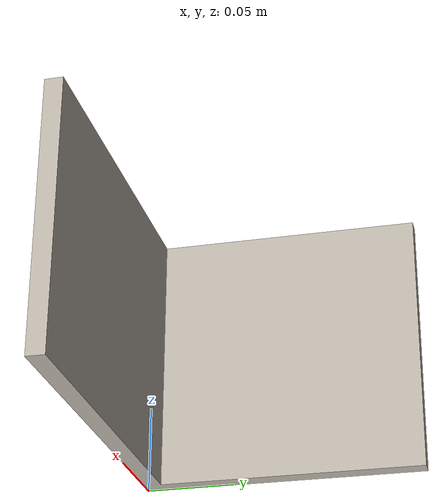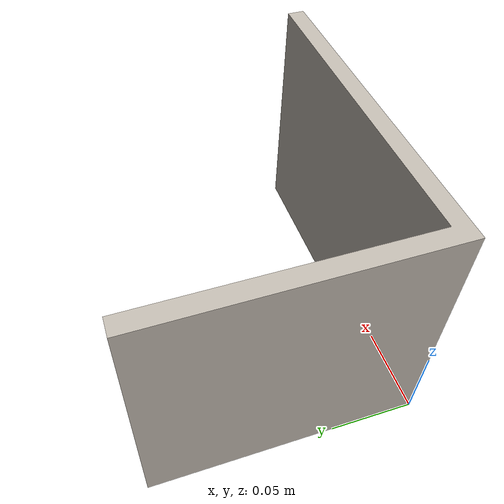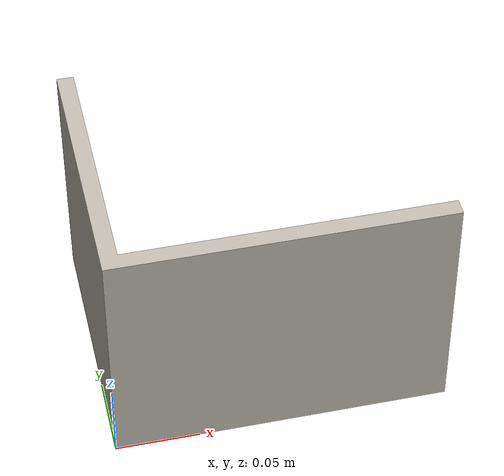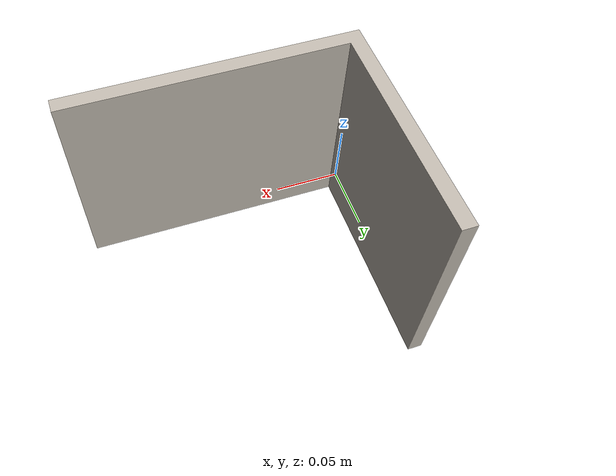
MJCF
<mujoco model="bookend2_blender">
  <default>
    <default class="visual">
      <geom group="2" type="mesh" contype="0" conaffinity="0"/> <!--  contype⁠=⁠conaffinity⁠=0 make it ignored by dynamics -->
    </default>
    <default class="collision_high_friction">
      <geom group="3" type="mesh" friction="0.8 0.02 0.0000" solref="0.01 1.0" priority="10"/>
    </default>
    <default class="collision_low_friction">
      <geom group="3" type="mesh" friction="0.1 0.02 0.0000" solref="0.01 1.0" priority="10"/>
    </default>
    <default class="collision_robot_surface">
      <geom group="3" type="mesh" friction="0.15 0.003 0.0001"
            solref="0.015 2.0" solimp="0.85 0.95 0.004"
            margin="0.0005" priority="20" rgba="0 0 1 0"/>
    </default>
  </default>
  <asset>
    <texture type="2d" name="rusty_metal_03" file="rusty_metal_03.png"/>
    <material name="0.615686_0.811765_0.929412_0.000000_0.000000" texture="rusty_metal_03" specular="0.0" shininess="0.0"/>
    <mesh file="bookend2_blender.obj"/>
    <mesh file="bookend2_blender_collision_0.obj"/>
    <mesh file="bookend2_blender_collision_1.obj"/>
    <mesh file="bookend2_blender_collision_2.obj"/>
  </asset>
  <worldbody>
    <body name="bookend2_blender">
      <geom material="0.615686_0.811765_0.929412_0.000000_0.000000" mesh="bookend2_blender" class="visual"/>
      <geom name="book_wall" mesh="bookend2_blender_collision_0" rgba="1 0 0 1" class="collision_high_friction"/>
      <geom name="book_pivot" mesh="bookend2_blender_collision_1" rgba="0 1 0 1" class="collision_low_friction"/>
      <geom name="book_floor" mesh="bookend2_blender_collision_2" rgba="0 0 1 1" class="collision_high_friction"/>
      <geom name="robot_wall_surface" mesh="bookend2_blender_collision_0" class="collision_robot_surface"/>
      <geom name="robot_pivot_surface" mesh="bookend2_blender_collision_1" class="collision_robot_surface"/>
      <geom name="robot_floor_surface" mesh="bookend2_blender_collision_2" class="collision_robot_surface"/>
    </body>
  </worldbody>
</mujoco>
